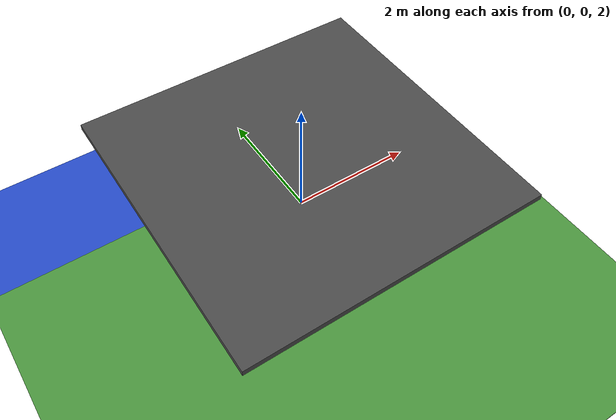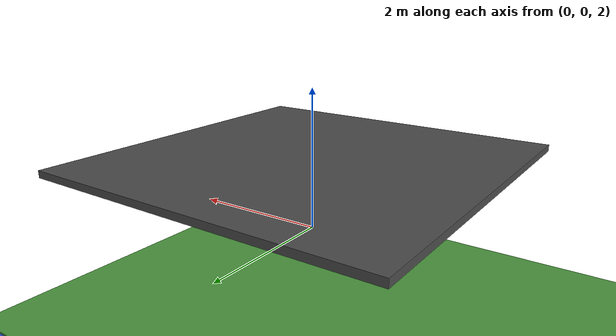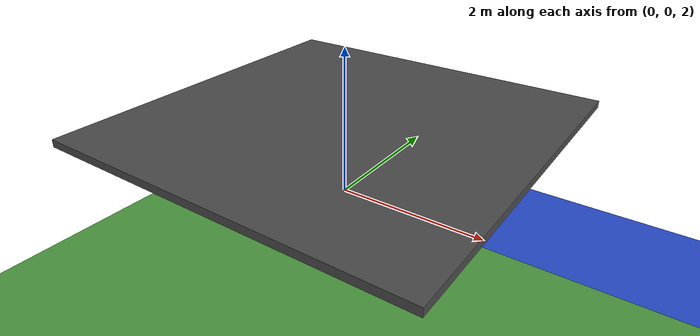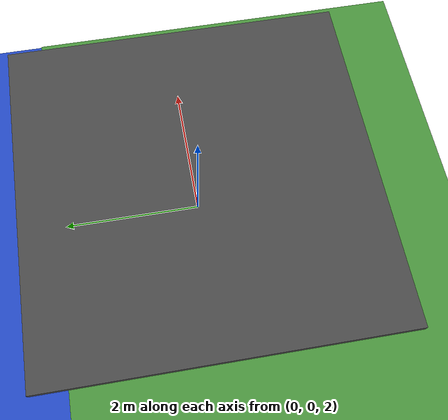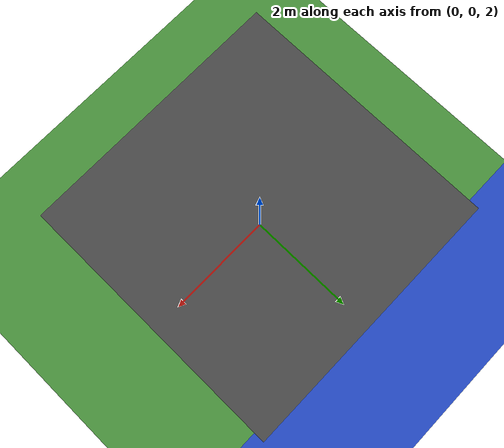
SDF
<?xml version="1.0" ?>
<sdf version="1.6">
  <world name="default">
    <gui>
      <camera name="camera">
        <pose>0 -21.555550 5.573201 0 0.169398 1.5708</pose>
      </camera>
    </gui>
    <scene>
      <grid>false</grid>
    </scene>
    <!-- A global light source -->
    <include>
      <uri>model://sun</uri>
    </include>

    <model name="water_level">
    <pose>0 52.5 0 0 0 0</pose>
    <link name="link">
      <visual name="visual">
        <geometry>
          <plane>
            <normal>0 0 1</normal>
            <size>100 100</size>
          </plane>
        </geometry>
        <material>
          <script>
            <name>Gazebo/BlueTransparent</name>
            <uri>file://media/materials/scripts/gazebo.material</uri>
          </script>
        </material>
      </visual>
    </link>
    <static>true</static>
    </model>

    <model name="grass_plane">
    <pose>0 -22.5 0 0 0 0</pose>
    <link name="link">
      <visual name="visual">
        <geometry>
          <plane>
            <normal>0 0 1</normal>
            <size>100 50</size>
          </plane>
        </geometry>
        <material>
          <script>
            <name>Gazebo/Grass</name>
            <uri>file://media/materials/scripts/gazebo.material</uri>
          </script>
        </material>
      </visual>
      <collision name="collision">
        <geometry>
          <plane>
            <normal>0 0 1</normal>
            <size>100 50</size>
          </plane>
        </geometry>
      </collision>
    </link>
    <static>true</static>
    </model>

    <physics name='default_physics' default='0' type='ode'>
      <gravity>0 0 -9.8066</gravity>
      <ode>
        <solver>
          <type>quick</type>
          <iters>10</iters>
          <sor>1.3</sor>
          <use_dynamic_moi_rescaling>0</use_dynamic_moi_rescaling>
        </solver>
        <constraints>
          <cfm>0</cfm>
          <erp>0.2</erp>
          <contact_max_correcting_vel>100</contact_max_correcting_vel>
          <contact_surface_layer>0.001</contact_surface_layer>
        </constraints>
      </ode>
      <max_step_size>0.004</max_step_size>
      <real_time_factor>1</real_time_factor>
      <real_time_update_rate>250</real_time_update_rate>
      <magnetic_field>6.0e-6 2.3e-5 -4.2e-5</magnetic_field>
</physics>

    <include>
      <uri>model://moving_platform</uri>
      <pose>0 0 1 0 0 0</pose>
    </include>

    <plugin name="spawn_buoy" filename="libspawn_buoy.so"/>
    <plugin name="ros_link_attacher_plugin" filename="libgazebo_ros_link_attacher.so"/>
  </world>
</sdf>

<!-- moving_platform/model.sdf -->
<sdf version="1.6">
  <model name="moving_platform">
    <static>false</static>
    <allow_auto_disable>false</allow_auto_disable>

    <link name="platform_link">
      <gravity>false</gravity>
      <pose>0 0 2 0 0 0</pose>

      <inertial>
        <mass>10000</mass>
        <inertia>
          <ixx>10000</ixx>
          <ixy>0</ixy>
          <ixz>0</ixz>
          <iyy>10000</iyy>
          <iyz>0</iyz>
          <izz>10000</izz>
        </inertia>
      </inertial>

      <visual name="platform_visual">
        <geometry>
          <box>
            <size>5 5 0.1</size>
          </box>
        </geometry>
        <material>
          <ambient>0.3 0.3 0.3 1</ambient>
          <diffuse>0.3 0.3 0.3 1</diffuse>
          <specular>0.1 0.1 0.1 1</specular>
        </material>
      </visual>

      <collision name="platform_collision">
        <geometry>
          <box>
            <size>5 5 0.1</size>
          </box>
        </geometry>
      </collision>

      <sensor name="navsat_sensor" type="navsat">
        <always_on>1</always_on>
        <update_rate>30</update_rate>
      </sensor>

      <sensor name="imu_sensor" type="imu">
        <always_on>1</always_on>
        <update_rate>30</update_rate>
      </sensor>
    </link>

    <plugin filename="libMovingPlatformController.so" name="moving_platform_controller">
      <axis>x</axis>
      <amplitude>4.0</amplitude>
      <omega>0.25</omega>
      <z_offset>0.0</z_offset>
    </plugin>
  </model>
</sdf>
